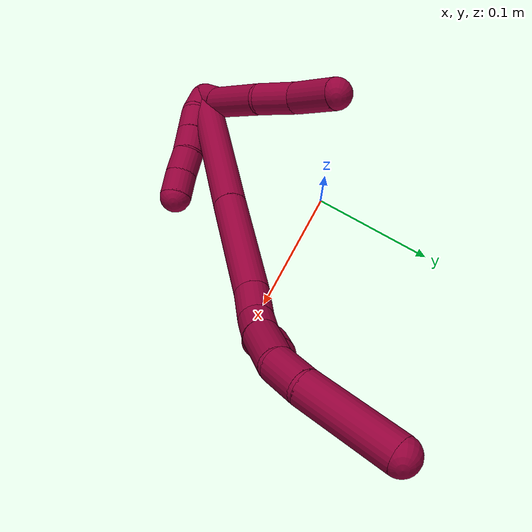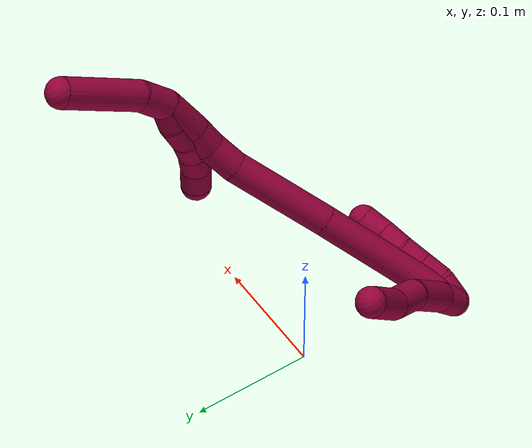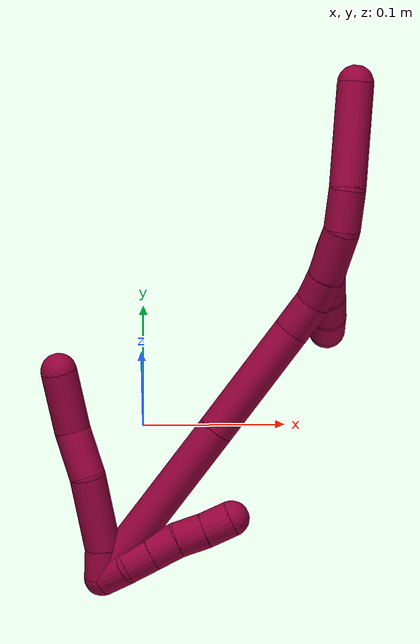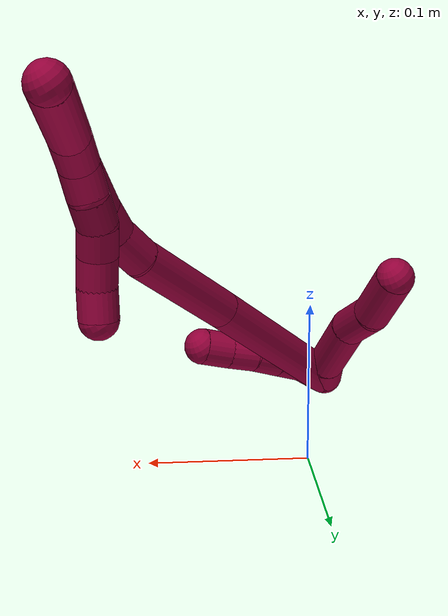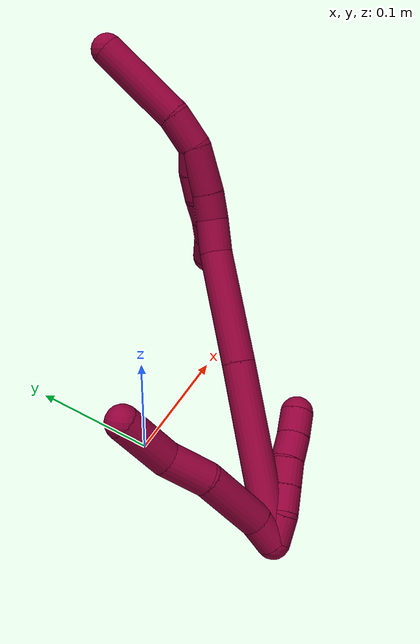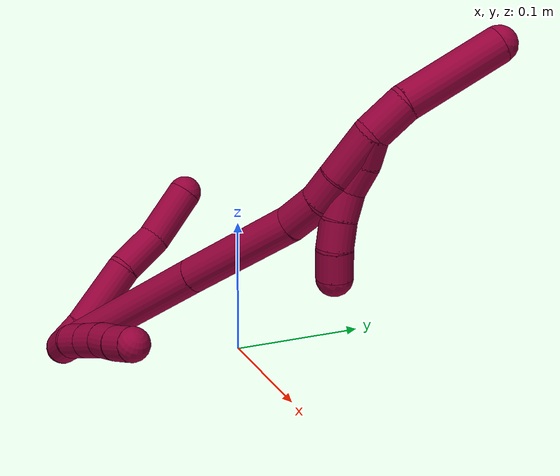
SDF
<sdf version="1.7">
 <world name="default">
  <model name="8">
   <static>0</static>
   <link name="8">
    <collision name="collision-cylinder-e_1_2_8">
     <pose>-0.004146 0.005396 0.00813 -0.585989 -0.401803 0.122718</pose>
     <geometry><cylinder><radius>0.0125</radius><length>0.021204</length></cylinder></geometry>
     <surface>
      <friction><ode><mu>1.16</mu><mu2>1.16</mu2><slip1>0</slip1><slip2>0</slip2></ode></friction>
      <contact><ode><kp>1e+06</kp><kd>1</kd><max_vel>0</max_vel><min_depth>0.001</min_depth></ode></contact>
     </surface>
    </collision>
    <visual name="visual-cylinder-e_1_2_8">
     <pose>-0.004146 0.005396 0.00813 -0.585989 -0.401803 0.122718</pose>
     <geometry><cylinder><radius>0.0125</radius><length>0.021204</length></cylinder></geometry>
     <material><ambient>0.584314 0 0.227451 1</ambient></material>
    </visual>
    <collision name="collision-cylinder-e_2_8_9">
     <pose>-0.023603 0.02326 0.033262 -0.632694 -0.628062 0.21183</pose>
     <geometry><cylinder><radius>0.0125</radius><length>0.052114</length></cylinder></geometry>
     <surface>
      <friction><ode><mu>1.16</mu><mu2>1.16</mu2><slip1>0</slip1><slip2>0</slip2></ode></friction>
      <contact><ode><kp>1e+06</kp><kd>1</kd><max_vel>0</max_vel><min_depth>0.001</min_depth></ode></contact>
     </surface>
    </collision>
    <visual name="visual-cylinder-e_2_8_9">
     <pose>-0.023603 0.02326 0.033262 -0.632694 -0.628062 0.21183</pose>
     <geometry><cylinder><radius>0.0125</radius><length>0.052114</length></cylinder></geometry>
     <material><ambient>0.584314 0 0.227451 1</ambient></material>
    </visual>
    <collision name="collision-cylinder-e_3_9_10">
     <pose>-0.04913 0.046724 0.058001 -0.957783 -0.649789 0.346265</pose>
     <geometry><cylinder><radius>0.0125</radius><length>0.033772</length></cylinder></geometry>
     <surface>
      <friction><ode><mu>1.16</mu><mu2>1.16</mu2><slip1>0</slip1><slip2>0</slip2></ode></friction>
      <contact><ode><kp>1e+06</kp><kd>1</kd><max_vel>0</max_vel><min_depth>0.001</min_depth></ode></contact>
     </surface>
    </collision>
    <visual name="visual-cylinder-e_3_9_10">
     <pose>-0.04913 0.046724 0.058001 -0.957783 -0.649789 0.346265</pose>
     <geometry><cylinder><radius>0.0125</radius><length>0.033772</length></cylinder></geometry>
     <material><ambient>0.584314 0 0.227451 1</ambient></material>
    </visual>
    <collision name="collision-cylinder-e_4_10_6">
     <pose>-0.072291 0.06754 0.079749 -0.61117 -0.647669 0.210986</pose>
     <geometry><cylinder><radius>0.0125</radius><length>0.04291</length></cylinder></geometry>
     <surface>
      <friction><ode><mu>1.16</mu><mu2>1.16</mu2><slip1>0</slip1><slip2>0</slip2></ode></friction>
      <contact><ode><kp>1e+06</kp><kd>1</kd><max_vel>0</max_vel><min_depth>0.001</min_depth></ode></contact>
     </surface>
    </collision>
    <visual name="visual-cylinder-e_4_10_6">
     <pose>-0.072291 0.06754 0.079749 -0.61117 -0.647669 0.210986</pose>
     <geometry><cylinder><radius>0.0125</radius><length>0.04291</length></cylinder></geometry>
     <material><ambient>0.584314 0 0.227451 1</ambient></material>
    </visual>
    <collision name="collision-cylinder-e_1_2_11">
     <pose>0.004501 -6.9e-05 0.00893 0.007735 0.466849 0.001839</pose>
     <geometry><cylinder><radius>0.0125</radius><length>0.02</length></cylinder></geometry>
     <surface>
      <friction><ode><mu>1.16</mu><mu2>1.16</mu2><slip1>0</slip1><slip2>0</slip2></ode></friction>
      <contact><ode><kp>1e+06</kp><kd>1</kd><max_vel>0</max_vel><min_depth>0.001</min_depth></ode></contact>
     </surface>
    </collision>
    <visual name="visual-cylinder-e_1_2_11">
     <pose>0.004501 -6.9e-05 0.00893 0.007735 0.466849 0.001839</pose>
     <geometry><cylinder><radius>0.0125</radius><length>0.02</length></cylinder></geometry>
     <material><ambient>0.584314 0 0.227451 1</ambient></material>
    </visual>
    <collision name="collision-cylinder-e_2_11_12">
     <pose>0.014779 0.002242 0.025666 -0.295949 0.616 -0.09477</pose>
     <geometry><cylinder><radius>0.0125</radius><length>0.02</length></cylinder></geometry>
     <surface>
      <friction><ode><mu>1.16</mu><mu2>1.16</mu2><slip1>0</slip1><slip2>0</slip2></ode></friction>
      <contact><ode><kp>1e+06</kp><kd>1</kd><max_vel>0</max_vel><min_depth>0.001</min_depth></ode></contact>
     </surface>
    </collision>
    <visual name="visual-cylinder-e_2_11_12">
     <pose>0.014779 0.002242 0.025666 -0.295949 0.616 -0.09477</pose>
     <geometry><cylinder><radius>0.0125</radius><length>0.02</length></cylinder></geometry>
     <material><ambient>0.584314 0 0.227451 1</ambient></material>
    </visual>
    <collision name="collision-cylinder-e_3_12_13">
     <pose>0.026283 0.007008 0.041317 -0.295271 0.60965 -0.093514</pose>
     <geometry><cylinder><radius>0.0125</radius><length>0.02</length></cylinder></geometry>
     <surface>
      <friction><ode><mu>1.16</mu><mu2>1.16</mu2><slip1>0</slip1><slip2>0</slip2></ode></friction>
      <contact><ode><kp>1e+06</kp><kd>1</kd><max_vel>0</max_vel><min_depth>0.001</min_depth></ode></contact>
     </surface>
    </collision>
    <visual name="visual-cylinder-e_3_12_13">
     <pose>0.026283 0.007008 0.041317 -0.295271 0.60965 -0.093514</pose>
     <geometry><cylinder><radius>0.0125</radius><length>0.02</length></cylinder></geometry>
     <material><ambient>0.584314 0 0.227451 1</ambient></material>
    </visual>
    <collision name="collision-cylinder-e_4_13_14">
     <pose>0.038876 0.011088 0.05623 -0.23512 0.756943 -0.093858</pose>
     <geometry><cylinder><radius>0.0125</radius><length>0.02</length></cylinder></geometry>
     <surface>
      <friction><ode><mu>1.16</mu><mu2>1.16</mu2><slip1>0</slip1><slip2>0</slip2></ode></friction>
      <contact><ode><kp>1e+06</kp><kd>1</kd><max_vel>0</max_vel><min_depth>0.001</min_depth></ode></contact>
     </surface>
    </collision>
    <visual name="visual-cylinder-e_4_13_14">
     <pose>0.038876 0.011088 0.05623 -0.23512 0.756943 -0.093858</pose>
     <geometry><cylinder><radius>0.0125</radius><length>0.02</length></cylinder></geometry>
     <material><ambient>0.584314 0 0.227451 1</ambient></material>
    </visual>
    <collision name="collision-cylinder-e_5_14_5">
     <pose>0.05198 0.015059 0.070777 -0.295709 0.673513 -0.104192</pose>
     <geometry><cylinder><radius>0.0125</radius><length>0.02</length></cylinder></geometry>
     <surface>
      <friction><ode><mu>1.16</mu><mu2>1.16</mu2><slip1>0</slip1><slip2>0</slip2></ode></friction>
      <contact><ode><kp>1e+06</kp><kd>1</kd><max_vel>0</max_vel><min_depth>0.001</min_depth></ode></contact>
     </surface>
    </collision>
    <visual name="visual-cylinder-e_5_14_5">
     <pose>0.05198 0.015059 0.070777 -0.295709 0.673513 -0.104192</pose>
     <geometry><cylinder><radius>0.0125</radius><length>0.02</length></cylinder></geometry>
     <material><ambient>0.584314 0 0.227451 1</ambient></material>
    </visual>
    <collision name="collision-cylinder-e_1_2_15">
     <pose>0.012194 0.026504 0.058603 -0.424734 0.187363 -0.040512</pose>
     <geometry><cylinder><radius>0.0125</radius><length>0.130926</length></cylinder></geometry>
     <surface>
      <friction><ode><mu>1.16</mu><mu2>1.16</mu2><slip1>0</slip1><slip2>0</slip2></ode></friction>
      <contact><ode><kp>1e+06</kp><kd>1</kd><max_vel>0</max_vel><min_depth>0.001</min_depth></ode></contact>
     </surface>
    </collision>
    <visual name="visual-cylinder-e_1_2_15">
     <pose>0.012194 0.026504 0.058603 -0.424734 0.187363 -0.040512</pose>
     <geometry><cylinder><radius>0.0125</radius><length>0.130926</length></cylinder></geometry>
     <material><ambient>0.584314 0 0.227451 1</ambient></material>
    </visual>
    <collision name="collision-cylinder-e_2_15_16">
     <pose>0.032533 0.071058 0.15546 -0.44088 0.190232 -0.04275</pose>
     <geometry><cylinder><radius>0.0125</radius><length>0.086154</length></cylinder></geometry>
     <surface>
      <friction><ode><mu>1.16</mu><mu2>1.16</mu2><slip1>0</slip1><slip2>0</slip2></ode></friction>
      <contact><ode><kp>1e+06</kp><kd>1</kd><max_vel>0</max_vel><min_depth>0.001</min_depth></ode></contact>
     </surface>
    </collision>
    <visual name="visual-cylinder-e_2_15_16">
     <pose>0.032533 0.071058 0.15546 -0.44088 0.190232 -0.04275</pose>
     <geometry><cylinder><radius>0.0125</radius><length>0.086154</length></cylinder></geometry>
     <material><ambient>0.584314 0 0.227451 1</ambient></material>
    </visual>
    <collision name="collision-cylinder-e_3_16_17">
     <pose>0.042194 0.092822 0.206147 -0.290164 0.116342 -0.017017</pose>
     <geometry><cylinder><radius>0.0125</radius><length>0.026125</length></cylinder></geometry>
     <surface>
      <friction><ode><mu>1.16</mu><mu2>1.16</mu2><slip1>0</slip1><slip2>0</slip2></ode></friction>
      <contact><ode><kp>1e+06</kp><kd>1</kd><max_vel>0</max_vel><min_depth>0.001</min_depth></ode></contact>
     </surface>
    </collision>
    <visual name="visual-cylinder-e_3_16_17">
     <pose>0.042194 0.092822 0.206147 -0.290164 0.116342 -0.017017</pose>
     <geometry><cylinder><radius>0.0125</radius><length>0.026125</length></cylinder></geometry>
     <material><ambient>0.584314 0 0.227451 1</ambient></material>
    </visual>
    <collision name="collision-cylinder-e_4_17_18">
     <pose>0.042562 0.098659 0.228653 -0.207967 -0.111092 0.011605</pose>
     <geometry><cylinder><radius>0.0125</radius><length>0.020718</length></cylinder></geometry>
     <surface>
      <friction><ode><mu>1.16</mu><mu2>1.16</mu2><slip1>0</slip1><slip2>0</slip2></ode></friction>
      <contact><ode><kp>1e+06</kp><kd>1</kd><max_vel>0</max_vel><min_depth>0.001</min_depth></ode></contact>
     </surface>
    </collision>
    <visual name="visual-cylinder-e_4_17_18">
     <pose>0.042562 0.098659 0.228653 -0.207967 -0.111092 0.011605</pose>
     <geometry><cylinder><radius>0.0125</radius><length>0.020718</length></cylinder></geometry>
     <material><ambient>0.584314 0 0.227451 1</ambient></material>
    </visual>
    <collision name="collision-cylinder-e_5_18_1">
     <pose>0.037844 0.105691 0.255713 -0.28116 -0.199193 0.02828</pose>
     <geometry><cylinder><radius>0.0125</radius><length>0.036076</length></cylinder></geometry>
     <surface>
      <friction><ode><mu>1.16</mu><mu2>1.16</mu2><slip1>0</slip1><slip2>0</slip2></ode></friction>
      <contact><ode><kp>1e+06</kp><kd>1</kd><max_vel>0</max_vel><min_depth>0.001</min_depth></ode></contact>
     </surface>
    </collision>
    <visual name="visual-cylinder-e_5_18_1">
     <pose>0.037844 0.105691 0.255713 -0.28116 -0.199193 0.02828</pose>
     <geometry><cylinder><radius>0.0125</radius><length>0.036076</length></cylinder></geometry>
     <material><ambient>0.584314 0 0.227451 1</ambient></material>
    </visual>
    <collision name="collision-cylinder-e_1_1_19">
     <pose>0.030085 0.118231 0.283959 -0.595872 -0.298798 0.092377</pose>
     <geometry><cylinder><radius>0.0125</radius><length>0.028466</length></cylinder></geometry>
     <surface>
      <friction><ode><mu>1.16</mu><mu2>1.16</mu2><slip1>0</slip1><slip2>0</slip2></ode></friction>
      <contact><ode><kp>1e+06</kp><kd>1</kd><max_vel>0</max_vel><min_depth>0.001</min_depth></ode></contact>
     </surface>
    </collision>
    <visual name="visual-cylinder-e_1_1_19">
     <pose>0.030085 0.118231 0.283959 -0.595872 -0.298798 0.092377</pose>
     <geometry><cylinder><radius>0.0125</radius><length>0.028466</length></cylinder></geometry>
     <material><ambient>0.584314 0 0.227451 1</ambient></material>
    </visual>
    <collision name="collision-cylinder-e_2_19_4">
     <pose>0.016574 0.151802 0.318014 -0.849735 -0.263672 0.119844</pose>
     <geometry><cylinder><radius>0.0125</radius><length>0.071534</length></cylinder></geometry>
     <surface>
      <friction><ode><mu>1.16</mu><mu2>1.16</mu2><slip1>0</slip1><slip2>0</slip2></ode></friction>
      <contact><ode><kp>1e+06</kp><kd>1</kd><max_vel>0</max_vel><min_depth>0.001</min_depth></ode></contact>
     </surface>
    </collision>
    <visual name="visual-cylinder-e_2_19_4">
     <pose>0.016574 0.151802 0.318014 -0.849735 -0.263672 0.119844</pose>
     <geometry><cylinder><radius>0.0125</radius><length>0.071534</length></cylinder></geometry>
     <material><ambient>0.584314 0 0.227451 1</ambient></material>
    </visual>
    <collision name="collision-cylinder-e_1_1_20">
     <pose>0.03705 0.111566 0.263142 -3.04056 0.281167 -2.45535</pose>
     <geometry><cylinder><radius>0.0125</radius><length>0.02</length></cylinder></geometry>
     <surface>
      <friction><ode><mu>1.16</mu><mu2>1.16</mu2><slip1>0</slip1><slip2>0</slip2></ode></friction>
      <contact><ode><kp>1e+06</kp><kd>1</kd><max_vel>0</max_vel><min_depth>0.001</min_depth></ode></contact>
     </surface>
    </collision>
    <visual name="visual-cylinder-e_1_1_20">
     <pose>0.03705 0.111566 0.263142 -3.04056 0.281167 -2.45535</pose>
     <geometry><cylinder><radius>0.0125</radius><length>0.02</length></cylinder></geometry>
     <material><ambient>0.584314 0 0.227451 1</ambient></material>
    </visual>
    <collision name="collision-cylinder-e_2_20_21">
     <pose>0.042629 0.110977 0.244113 2.97857 0.284297 2.10422</pose>
     <geometry><cylinder><radius>0.0125</radius><length>0.02</length></cylinder></geometry>
     <surface>
      <friction><ode><mu>1.16</mu><mu2>1.16</mu2><slip1>0</slip1><slip2>0</slip2></ode></friction>
      <contact><ode><kp>1e+06</kp><kd>1</kd><max_vel>0</max_vel><min_depth>0.001</min_depth></ode></contact>
     </surface>
    </collision>
    <visual name="visual-cylinder-e_2_20_21">
     <pose>0.042629 0.110977 0.244113 2.97857 0.284297 2.10422</pose>
     <geometry><cylinder><radius>0.0125</radius><length>0.02</length></cylinder></geometry>
     <material><ambient>0.584314 0 0.227451 1</ambient></material>
    </visual>
    <collision name="collision-cylinder-e_3_21_22">
     <pose>0.05069 0.109055 0.226142 3.09879 0.55339 2.99114</pose>
     <geometry><cylinder><radius>0.0125</radius><length>0.02</length></cylinder></geometry>
     <surface>
      <friction><ode><mu>1.16</mu><mu2>1.16</mu2><slip1>0</slip1><slip2>0</slip2></ode></friction>
      <contact><ode><kp>1e+06</kp><kd>1</kd><max_vel>0</max_vel><min_depth>0.001</min_depth></ode></contact>
     </surface>
    </collision>
    <visual name="visual-cylinder-e_3_21_22">
     <pose>0.05069 0.109055 0.226142 3.09879 0.55339 2.99114</pose>
     <geometry><cylinder><radius>0.0125</radius><length>0.02</length></cylinder></geometry>
     <material><ambient>0.584314 0 0.227451 1</ambient></material>
    </visual>
    <collision name="collision-cylinder-e_4_22_23">
     <pose>0.061254 0.109868 0.209249 -3.00231 0.559566 -2.66527</pose>
     <geometry><cylinder><radius>0.0125</radius><length>0.02</length></cylinder></geometry>
     <surface>
      <friction><ode><mu>1.16</mu><mu2>1.16</mu2><slip1>0</slip1><slip2>0</slip2></ode></friction>
      <contact><ode><kp>1e+06</kp><kd>1</kd><max_vel>0</max_vel><min_depth>0.001</min_depth></ode></contact>
     </surface>
    </collision>
    <visual name="visual-cylinder-e_4_22_23">
     <pose>0.061254 0.109868 0.209249 -3.00231 0.559566 -2.66527</pose>
     <geometry><cylinder><radius>0.0125</radius><length>0.02</length></cylinder></geometry>
     <material><ambient>0.584314 0 0.227451 1</ambient></material>
    </visual>
    <collision name="collision-cylinder-e_5_23_3">
     <pose>0.071127 0.113898 0.192429 -2.81508 0.474078 -1.94471</pose>
     <geometry><cylinder><radius>0.0125</radius><length>0.02</length></cylinder></geometry>
     <surface>
      <friction><ode><mu>1.16</mu><mu2>1.16</mu2><slip1>0</slip1><slip2>0</slip2></ode></friction>
      <contact><ode><kp>1e+06</kp><kd>1</kd><max_vel>0</max_vel><min_depth>0.001</min_depth></ode></contact>
     </surface>
    </collision>
    <visual name="visual-cylinder-e_5_23_3">
     <pose>0.071127 0.113898 0.192429 -2.81508 0.474078 -1.94471</pose>
     <geometry><cylinder><radius>0.0125</radius><length>0.02</length></cylinder></geometry>
     <material><ambient>0.584314 0 0.227451 1</ambient></material>
    </visual>
    <collision name="collision-sphere-3">
     <pose>0.075692 0.116752 0.184002 0 -0 0</pose>
     <geometry><sphere><radius>0.0125</radius></sphere></geometry>
     <surface>
      <friction><ode><mu>1.16</mu><mu2>1.16</mu2><slip1>0</slip1><slip2>0</slip2></ode></friction>
      <contact><ode><kp>1e+06</kp><kd>1</kd><max_vel>0</max_vel><min_depth>0.001</min_depth></ode></contact>
     </surface>
    </collision>
    <visual name="visual-sphere-3">
     <pose>0.075692 0.116752 0.184002 0 -0 0</pose>
     <geometry><sphere><radius>0.0125</radius></sphere></geometry>
     <material><ambient>0.584314 0 0.227451 1</ambient></material>
    </visual>
    <collision name="collision-sphere-23">
     <pose>0.066562 0.111044 0.200856 0 -0 0</pose>
     <geometry><sphere><radius>0.0125</radius></sphere></geometry>
     <surface>
      <friction><ode><mu>1.16</mu><mu2>1.16</mu2><slip1>0</slip1><slip2>0</slip2></ode></friction>
      <contact><ode><kp>1e+06</kp><kd>1</kd><max_vel>0</max_vel><min_depth>0.001</min_depth></ode></contact>
     </surface>
    </collision>
    <visual name="visual-sphere-23">
     <pose>0.066562 0.111044 0.200856 0 -0 0</pose>
     <geometry><sphere><radius>0.0125</radius></sphere></geometry>
     <material><ambient>0.584314 0 0.227451 1</ambient></material>
    </visual>
    <collision name="collision-sphere-22">
     <pose>0.055946 0.108691 0.217642 0 -0 0</pose>
     <geometry><sphere><radius>0.0125</radius></sphere></geometry>
     <surface>
      <friction><ode><mu>1.16</mu><mu2>1.16</mu2><slip1>0</slip1><slip2>0</slip2></ode></friction>
      <contact><ode><kp>1e+06</kp><kd>1</kd><max_vel>0</max_vel><min_depth>0.001</min_depth></ode></contact>
     </surface>
    </collision>
    <visual name="visual-sphere-22">
     <pose>0.055946 0.108691 0.217642 0 -0 0</pose>
     <geometry><sphere><radius>0.0125</radius></sphere></geometry>
     <material><ambient>0.584314 0 0.227451 1</ambient></material>
    </visual>
    <collision name="collision-sphere-21">
     <pose>0.045434 0.109419 0.234641 0 -0 0</pose>
     <geometry><sphere><radius>0.0125</radius></sphere></geometry>
     <surface>
      <friction><ode><mu>1.16</mu><mu2>1.16</mu2><slip1>0</slip1><slip2>0</slip2></ode></friction>
      <contact><ode><kp>1e+06</kp><kd>1</kd><max_vel>0</max_vel><min_depth>0.001</min_depth></ode></contact>
     </surface>
    </collision>
    <visual name="visual-sphere-21">
     <pose>0.045434 0.109419 0.234641 0 -0 0</pose>
     <geometry><sphere><radius>0.0125</radius></sphere></geometry>
     <material><ambient>0.584314 0 0.227451 1</ambient></material>
    </visual>
    <collision name="collision-sphere-20">
     <pose>0.039825 0.112535 0.253584 0 -0 0</pose>
     <geometry><sphere><radius>0.0125</radius></sphere></geometry>
     <surface>
      <friction><ode><mu>1.16</mu><mu2>1.16</mu2><slip1>0</slip1><slip2>0</slip2></ode></friction>
      <contact><ode><kp>1e+06</kp><kd>1</kd><max_vel>0</max_vel><min_depth>0.001</min_depth></ode></contact>
     </surface>
    </collision>
    <visual name="visual-sphere-20">
     <pose>0.039825 0.112535 0.253584 0 -0 0</pose>
     <geometry><sphere><radius>0.0125</radius></sphere></geometry>
     <material><ambient>0.584314 0 0.227451 1</ambient></material>
    </visual>
    <collision name="collision-sphere-4">
     <pose>0.007252 0.177738 0.34081 0 -0 0</pose>
     <geometry><sphere><radius>0.0125</radius></sphere></geometry>
     <surface>
      <friction><ode><mu>1.16</mu><mu2>1.16</mu2><slip1>0</slip1><slip2>0</slip2></ode></friction>
      <contact><ode><kp>1e+06</kp><kd>1</kd><max_vel>0</max_vel><min_depth>0.001</min_depth></ode></contact>
     </surface>
    </collision>
    <visual name="visual-sphere-4">
     <pose>0.007252 0.177738 0.34081 0 -0 0</pose>
     <geometry><sphere><radius>0.0125</radius></sphere></geometry>
     <material><ambient>0.584314 0 0.227451 1</ambient></material>
    </visual>
    <collision name="collision-sphere-11">
     <pose>0.009001 -0.000138 0.017859 0 -0 0</pose>
     <geometry><sphere><radius>0.0125</radius></sphere></geometry>
     <surface>
      <friction><ode><mu>1.16</mu><mu2>1.16</mu2><slip1>0</slip1><slip2>0</slip2></ode></friction>
      <contact><ode><kp>1e+06</kp><kd>1</kd><max_vel>0</max_vel><min_depth>0.001</min_depth></ode></contact>
     </surface>
    </collision>
    <visual name="visual-sphere-11">
     <pose>0.009001 -0.000138 0.017859 0 -0 0</pose>
     <geometry><sphere><radius>0.0125</radius></sphere></geometry>
     <material><ambient>0.584314 0 0.227451 1</ambient></material>
    </visual>
    <collision name="collision-sphere-6">
     <pose>-0.085235 0.077358 0.093762 0 -0 0</pose>
     <geometry><sphere><radius>0.0125</radius></sphere></geometry>
     <surface>
      <friction><ode><mu>1.16</mu><mu2>1.16</mu2><slip1>0</slip1><slip2>0</slip2></ode></friction>
      <contact><ode><kp>1e+06</kp><kd>1</kd><max_vel>0</max_vel><min_depth>0.001</min_depth></ode></contact>
     </surface>
    </collision>
    <visual name="visual-sphere-6">
     <pose>-0.085235 0.077358 0.093762 0 -0 0</pose>
     <geometry><sphere><radius>0.0125</radius></sphere></geometry>
     <material><ambient>0.584314 0 0.227451 1</ambient></material>
    </visual>
    <collision name="collision-sphere-10">
     <pose>-0.059346 0.057721 0.065736 0 -0 0</pose>
     <geometry><sphere><radius>0.0125</radius></sphere></geometry>
     <surface>
      <friction><ode><mu>1.16</mu><mu2>1.16</mu2><slip1>0</slip1><slip2>0</slip2></ode></friction>
      <contact><ode><kp>1e+06</kp><kd>1</kd><max_vel>0</max_vel><min_depth>0.001</min_depth></ode></contact>
     </surface>
    </collision>
    <visual name="visual-sphere-10">
     <pose>-0.059346 0.057721 0.065736 0 -0 0</pose>
     <geometry><sphere><radius>0.0125</radius></sphere></geometry>
     <material><ambient>0.584314 0 0.227451 1</ambient></material>
    </visual>
    <collision name="collision-sphere-9">
     <pose>-0.038913 0.035727 0.050266 0 -0 0</pose>
     <geometry><sphere><radius>0.0125</radius></sphere></geometry>
     <surface>
      <friction><ode><mu>1.16</mu><mu2>1.16</mu2><slip1>0</slip1><slip2>0</slip2></ode></friction>
      <contact><ode><kp>1e+06</kp><kd>1</kd><max_vel>0</max_vel><min_depth>0.001</min_depth></ode></contact>
     </surface>
    </collision>
    <visual name="visual-sphere-9">
     <pose>-0.038913 0.035727 0.050266 0 -0 0</pose>
     <geometry><sphere><radius>0.0125</radius></sphere></geometry>
     <material><ambient>0.584314 0 0.227451 1</ambient></material>
    </visual>
    <collision name="collision-sphere-2">
     <geometry><sphere><radius>0.0125</radius></sphere></geometry>
     <surface>
      <friction><ode><mu>1.16</mu><mu2>1.16</mu2><slip1>0</slip1><slip2>0</slip2></ode></friction>
      <contact><ode><kp>1e+06</kp><kd>1</kd><max_vel>0</max_vel><min_depth>0.001</min_depth></ode></contact>
     </surface>
    </collision>
    <visual name="visual-sphere-2">
     <geometry><sphere><radius>0.0125</radius></sphere></geometry>
     <material><ambient>0.584314 0 0.227451 1</ambient></material>
    </visual>
    <collision name="collision-sphere-19">
     <pose>0.025895 0.125865 0.295217 0 -0 0</pose>
     <geometry><sphere><radius>0.0125</radius></sphere></geometry>
     <surface>
      <friction><ode><mu>1.16</mu><mu2>1.16</mu2><slip1>0</slip1><slip2>0</slip2></ode></friction>
      <contact><ode><kp>1e+06</kp><kd>1</kd><max_vel>0</max_vel><min_depth>0.001</min_depth></ode></contact>
     </surface>
    </collision>
    <visual name="visual-sphere-19">
     <pose>0.025895 0.125865 0.295217 0 -0 0</pose>
     <geometry><sphere><radius>0.0125</radius></sphere></geometry>
     <material><ambient>0.584314 0 0.227451 1</ambient></material>
    </visual>
    <collision name="collision-sphere-8">
     <pose>-0.008292 0.010792 0.016259 0 -0 0</pose>
     <geometry><sphere><radius>0.0125</radius></sphere></geometry>
     <surface>
      <friction><ode><mu>1.16</mu><mu2>1.16</mu2><slip1>0</slip1><slip2>0</slip2></ode></friction>
      <contact><ode><kp>1e+06</kp><kd>1</kd><max_vel>0</max_vel><min_depth>0.001</min_depth></ode></contact>
     </surface>
    </collision>
    <visual name="visual-sphere-8">
     <pose>-0.008292 0.010792 0.016259 0 -0 0</pose>
     <geometry><sphere><radius>0.0125</radius></sphere></geometry>
     <material><ambient>0.584314 0 0.227451 1</ambient></material>
    </visual>
    <collision name="collision-sphere-12">
     <pose>0.020557 0.004623 0.033474 0 -0 0</pose>
     <geometry><sphere><radius>0.0125</radius></sphere></geometry>
     <surface>
      <friction><ode><mu>1.16</mu><mu2>1.16</mu2><slip1>0</slip1><slip2>0</slip2></ode></friction>
      <contact><ode><kp>1e+06</kp><kd>1</kd><max_vel>0</max_vel><min_depth>0.001</min_depth></ode></contact>
     </surface>
    </collision>
    <visual name="visual-sphere-12">
     <pose>0.020557 0.004623 0.033474 0 -0 0</pose>
     <geometry><sphere><radius>0.0125</radius></sphere></geometry>
     <material><ambient>0.584314 0 0.227451 1</ambient></material>
    </visual>
    <collision name="collision-sphere-13">
     <pose>0.032009 0.009394 0.049161 0 -0 0</pose>
     <geometry><sphere><radius>0.0125</radius></sphere></geometry>
     <surface>
      <friction><ode><mu>1.16</mu><mu2>1.16</mu2><slip1>0</slip1><slip2>0</slip2></ode></friction>
      <contact><ode><kp>1e+06</kp><kd>1</kd><max_vel>0</max_vel><min_depth>0.001</min_depth></ode></contact>
     </surface>
    </collision>
    <visual name="visual-sphere-13">
     <pose>0.032009 0.009394 0.049161 0 -0 0</pose>
     <geometry><sphere><radius>0.0125</radius></sphere></geometry>
     <material><ambient>0.584314 0 0.227451 1</ambient></material>
    </visual>
    <collision name="collision-sphere-14">
     <pose>0.045743 0.012781 0.0633 0 -0 0</pose>
     <geometry><sphere><radius>0.0125</radius></sphere></geometry>
     <surface>
      <friction><ode><mu>1.16</mu><mu2>1.16</mu2><slip1>0</slip1><slip2>0</slip2></ode></friction>
      <contact><ode><kp>1e+06</kp><kd>1</kd><max_vel>0</max_vel><min_depth>0.001</min_depth></ode></contact>
     </surface>
    </collision>
    <visual name="visual-sphere-14">
     <pose>0.045743 0.012781 0.0633 0 -0 0</pose>
     <geometry><sphere><radius>0.0125</radius></sphere></geometry>
     <material><ambient>0.584314 0 0.227451 1</ambient></material>
    </visual>
    <collision name="collision-sphere-5">
     <pose>0.058217 0.017337 0.078254 0 -0 0</pose>
     <geometry><sphere><radius>0.0125</radius></sphere></geometry>
     <surface>
      <friction><ode><mu>1.16</mu><mu2>1.16</mu2><slip1>0</slip1><slip2>0</slip2></ode></friction>
      <contact><ode><kp>1e+06</kp><kd>1</kd><max_vel>0</max_vel><min_depth>0.001</min_depth></ode></contact>
     </surface>
    </collision>
    <visual name="visual-sphere-5">
     <pose>0.058217 0.017337 0.078254 0 -0 0</pose>
     <geometry><sphere><radius>0.0125</radius></sphere></geometry>
     <material><ambient>0.584314 0 0.227451 1</ambient></material>
    </visual>
    <collision name="collision-sphere-15">
     <pose>0.024387 0.053008 0.117205 0 -0 0</pose>
     <geometry><sphere><radius>0.0125</radius></sphere></geometry>
     <surface>
      <friction><ode><mu>1.16</mu><mu2>1.16</mu2><slip1>0</slip1><slip2>0</slip2></ode></friction>
      <contact><ode><kp>1e+06</kp><kd>1</kd><max_vel>0</max_vel><min_depth>0.001</min_depth></ode></contact>
     </surface>
    </collision>
    <visual name="visual-sphere-15">
     <pose>0.024387 0.053008 0.117205 0 -0 0</pose>
     <geometry><sphere><radius>0.0125</radius></sphere></geometry>
     <material><ambient>0.584314 0 0.227451 1</ambient></material>
    </visual>
    <collision name="collision-sphere-16">
     <pose>0.040678 0.089109 0.193716 0 -0 0</pose>
     <geometry><sphere><radius>0.0125</radius></sphere></geometry>
     <surface>
      <friction><ode><mu>1.16</mu><mu2>1.16</mu2><slip1>0</slip1><slip2>0</slip2></ode></friction>
      <contact><ode><kp>1e+06</kp><kd>1</kd><max_vel>0</max_vel><min_depth>0.001</min_depth></ode></contact>
     </surface>
    </collision>
    <visual name="visual-sphere-16">
     <pose>0.040678 0.089109 0.193716 0 -0 0</pose>
     <geometry><sphere><radius>0.0125</radius></sphere></geometry>
     <material><ambient>0.584314 0 0.227451 1</ambient></material>
    </visual>
    <collision name="collision-sphere-17">
     <pose>0.043711 0.096534 0.218579 0 -0 0</pose>
     <geometry><sphere><radius>0.0125</radius></sphere></geometry>
     <surface>
      <friction><ode><mu>1.16</mu><mu2>1.16</mu2><slip1>0</slip1><slip2>0</slip2></ode></friction>
      <contact><ode><kp>1e+06</kp><kd>1</kd><max_vel>0</max_vel><min_depth>0.001</min_depth></ode></contact>
     </surface>
    </collision>
    <visual name="visual-sphere-17">
     <pose>0.043711 0.096534 0.218579 0 -0 0</pose>
     <geometry><sphere><radius>0.0125</radius></sphere></geometry>
     <material><ambient>0.584314 0 0.227451 1</ambient></material>
    </visual>
    <collision name="collision-sphere-18">
     <pose>0.041414 0.100785 0.238726 0 -0 0</pose>
     <geometry><sphere><radius>0.0125</radius></sphere></geometry>
     <surface>
      <friction><ode><mu>1.16</mu><mu2>1.16</mu2><slip1>0</slip1><slip2>0</slip2></ode></friction>
      <contact><ode><kp>1e+06</kp><kd>1</kd><max_vel>0</max_vel><min_depth>0.001</min_depth></ode></contact>
     </surface>
    </collision>
    <visual name="visual-sphere-18">
     <pose>0.041414 0.100785 0.238726 0 -0 0</pose>
     <geometry><sphere><radius>0.0125</radius></sphere></geometry>
     <material><ambient>0.584314 0 0.227451 1</ambient></material>
    </visual>
    <collision name="collision-sphere-1">
     <pose>0.034275 0.110597 0.272701 0 -0 0</pose>
     <geometry><sphere><radius>0.0125</radius></sphere></geometry>
     <surface>
      <friction><ode><mu>1.16</mu><mu2>1.16</mu2><slip1>0</slip1><slip2>0</slip2></ode></friction>
      <contact><ode><kp>1e+06</kp><kd>1</kd><max_vel>0</max_vel><min_depth>0.001</min_depth></ode></contact>
     </surface>
    </collision>
    <visual name="visual-sphere-1">
     <pose>0.034275 0.110597 0.272701 0 -0 0</pose>
     <geometry><sphere><radius>0.0125</radius></sphere></geometry>
     <material><ambient>0.584314 0 0.227451 1</ambient></material>
    </visual>
    <inertial>
     <pose>0.015593 0.066287 0.14039 0 -0 0</pose>
     <mass>0.75</mass>
     <inertia>
      <ixx>0.000311</ixx>
      <ixy>0</ixy>
      <ixz>0</ixz>
      <iyy>0.000317</iyy>
      <iyz>0</iyz>
      <izz>-0.000139</izz>
     </inertia>
    </inertial>
   </link>
   <pose>-0.028396 -0.12823 0.011496 -0.301396 0.502081 -0.141145</pose>
  </model>
 </world>
</sdf>
